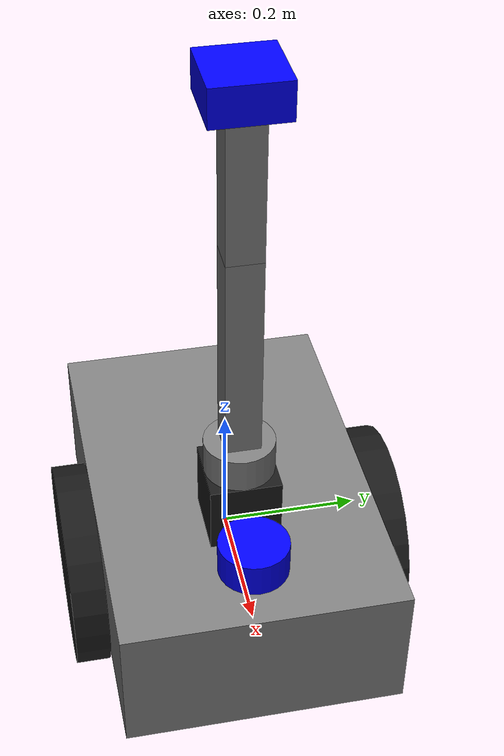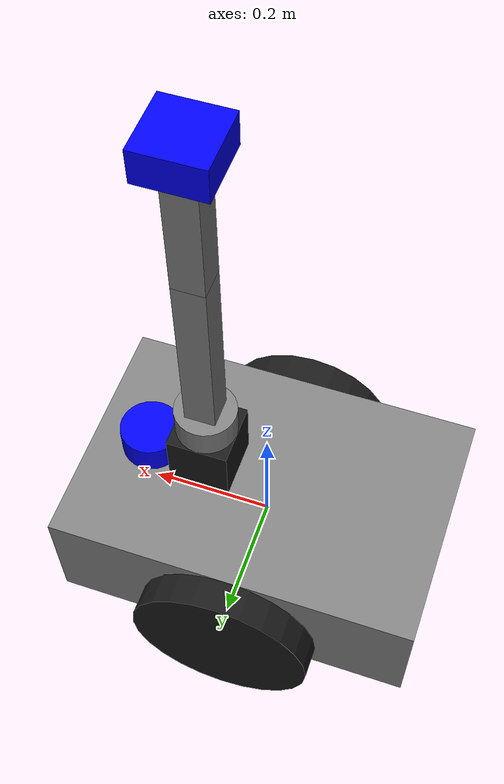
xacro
<?xml version="1.0"?>
<robot xmlns:xacro="http://www.ros.org/wiki/xacro" name="worker">

  <!-- 1. BASE LINK                                   -->
  <link name="base_link">
    <visual>
      <geometry>
        <box size="0.6 0.4 0.2"/>
      </geometry>
      <material name="gray">
        <color rgba="0.5 0.5 0.5 1.0"/>
      </material>
    </visual>
    <collision>
      <geometry>
        <box size="0.6 0.4 0.2"/>
      </geometry>
    </collision>
    <inertial>
      <mass value="15.0"/>
      <origin xyz="0 0 0" rpy="0 0 0"/>
      <inertia ixx="0.25" ixy="0" ixz="0" iyy="0.5" iyz="0" izz="0.6"/>
    </inertial>
  </link>

  <!-- 2. WHEELS                                      -->
  <xacro:macro name="wheel" params="prefix x_offset y_offset">
    <link name="${prefix}_wheel">
      <visual>
        <geometry>
          <cylinder radius="0.15" length="0.05"/>
        </geometry>
        <material name="black">
          <color rgba="0.1 0.1 0.1 1.0"/>
        </material>
      </visual>
      <collision>
        <geometry>
          <cylinder radius="0.15" length="0.05"/>
        </geometry>
      </collision>
      <inertial>
        <mass value="2.0"/>
        <origin xyz="0 0 0" rpy="0 0 0"/>
        <inertia ixx="0.0125" ixy="0" ixz="0" iyy="0.0125" iyz="0" izz="0.0225"/>
      </inertial>
    </link>

    <joint name="${prefix}_wheel_joint" type="continuous">
      <parent link="base_link"/>
      <child link="${prefix}_wheel"/>
      <origin xyz="${x_offset} ${y_offset} -0.05" rpy="-1.5708 0 0"/>
      <axis xyz="0 0 1"/>
    </joint>
  </xacro:macro>

  <xacro:wheel prefix="left" x_offset="0" y_offset="0.225" />
  <xacro:wheel prefix="right" x_offset="0" y_offset="-0.225" />

  <!-- CASTER WHEELS for stability -->
  <link name="front_caster">
    <collision>
      <geometry><sphere radius="0.099"/></geometry>
    </collision>
    <inertial>
      <mass value="0.5"/>
      <inertia ixx="0.001" ixy="0" ixz="0" iyy="0.001" iyz="0" izz="0.001"/>
    </inertial>
  </link>
  <joint name="front_caster_joint" type="fixed">
    <parent link="base_link"/>
    <child link="front_caster"/>
    <origin xyz="0.25 0 -0.1" rpy="0 0 0"/>
  </joint>

  <link name="rear_caster">
    <collision>
      <geometry><sphere radius="0.099"/></geometry>
    </collision>
    <inertial>
      <mass value="0.5"/>
      <inertia ixx="0.001" ixy="0" ixz="0" iyy="0.001" iyz="0" izz="0.001"/>
    </inertial>
  </link>
  <joint name="rear_caster_joint" type="fixed">
    <parent link="base_link"/>
    <child link="rear_caster"/>
    <origin xyz="-0.25 0 -0.1" rpy="0 0 0"/>
  </joint>

  <!-- 3. LIDAR SENSOR                                -->
  <link name="lidar_link">
    <visual>
      <geometry><cylinder radius="0.05" length="0.05"/></geometry>
      <material name="blue"><color rgba="0 0 1 1"/></material>
    </visual>
    <collision>
      <geometry><cylinder radius="0.05" length="0.05"/></geometry>
    </collision>
    <inertial>
      <mass value="0.1"/>
      <inertia ixx="0.0001" ixy="0" ixz="0" iyy="0.0001" iyz="0" izz="0.0001"/>
    </inertial>
  </link>
  <joint name="lidar_joint" type="fixed">
    <parent link="base_link"/>
    <child link="lidar_link"/>
    <origin xyz="0.2 0 0.125" rpy="0 0 0"/>
  </joint>

  <!-- 4. IGNITION GAZEBO PLUGINS                     -->
  <gazebo>
    <plugin filename="libignition-gazebo-diff-drive-system.so" name="ignition::gazebo::systems::DiffDrive">
      <left_joint>left_wheel_joint</left_joint>
      <right_joint>right_wheel_joint</right_joint>
      <wheel_separation>0.45</wheel_separation>
      <wheel_radius>0.15</wheel_radius>
      <odom_publish_frequency>50</odom_publish_frequency>
      <topic>cmd_vel</topic>
      <odom_topic>odom</odom_topic>
      <tf_topic>tf</tf_topic>
      <frame_id>odom</frame_id>
      <child_frame_id>base_link</child_frame_id>
    </plugin>
  </gazebo>

  <gazebo reference="lidar_link">
    <sensor type="gpu_lidar" name="lidar_sensor">
      <pose>0 0 0 0 0 0</pose>
      <visualize>true</visualize>
      <update_rate>10</update_rate>
      <topic>scan</topic>
      <ray>
        <scan>
          <horizontal>
            <samples>360</samples>
            <resolution>1</resolution>
            <min_angle>-3.14159</min_angle>
            <max_angle>3.14159</max_angle>
          </horizontal>
        </scan>
        <range>
          <min>0.15</min>
          <max>12.0</max>
          <resolution>0.01</resolution>
        </range>
      </ray>
    </sensor>
  </gazebo>

  <!-- 5. 3-DOF ARM & GRIPPER                         -->
  <link name="arm_base_link">
    <visual>
      <geometry><box size="0.1 0.1 0.1"/></geometry>
      <material name="black"/>
    </visual>
    <collision><geometry><box size="0.1 0.1 0.1"/></geometry></collision>
    <inertial><mass value="1.0"/><inertia ixx="0.01" ixy="0" ixz="0" iyy="0.01" iyz="0" izz="0.01"/></inertial>
  </link>
  <joint name="arm_base_joint" type="fixed">
    <parent link="base_link"/>
    <child link="arm_base_link"/>
    <origin xyz="0.1 0 0.15" rpy="0 0 0"/>
  </joint>

  <link name="shoulder_link">
    <visual>
      <geometry><cylinder radius="0.05" length="0.1"/></geometry>
      <material name="gray"/>
    </visual>
    <collision><geometry><cylinder radius="0.05" length="0.1"/></geometry></collision>
    <inertial><mass value="1.0"/><inertia ixx="0.01" ixy="0" ixz="0" iyy="0.01" iyz="0" izz="0.01"/></inertial>
  </link>
  <joint name="joint1" type="revolute">
    <parent link="arm_base_link"/>
    <child link="shoulder_link"/>
    <origin xyz="0 0 0.05" rpy="0 0 0"/>
    <axis xyz="0 0 1"/>
    <limit lower="-1.57" upper="1.57" effort="10.0" velocity="1.0"/>
  </joint>

  <link name="upper_arm_link">
    <visual>
      <geometry><box size="0.05 0.05 0.3"/></geometry>
      <origin xyz="0 0 0.15" rpy="0 0 0"/>
      <material name="gray"/>
    </visual>
    <collision><geometry><box size="0.05 0.05 0.3"/></geometry><origin xyz="0 0 0.15" rpy="0 0 0"/></collision>
    <inertial><mass value="1.0"/><origin xyz="0 0 0.15" rpy="0 0 0"/><inertia ixx="0.01" ixy="0" ixz="0" iyy="0.01" iyz="0" izz="0.01"/></inertial>
  </link>
  <joint name="joint2" type="revolute">
    <parent link="shoulder_link"/>
    <child link="upper_arm_link"/>
    <origin xyz="0 0 0.05" rpy="0 0 0"/>
    <axis xyz="0 1 0"/>
    <limit lower="-1.57" upper="1.57" effort="10.0" velocity="1.0"/>
  </joint>

  <link name="forearm_link">
    <visual>
      <geometry><box size="0.05 0.05 0.2"/></geometry>
      <origin xyz="0 0 0.1" rpy="0 0 0"/>
      <material name="gray"/>
    </visual>
    <collision><geometry><box size="0.05 0.05 0.2"/></geometry><origin xyz="0 0 0.1" rpy="0 0 0"/></collision>
    <inertial><mass value="0.5"/><origin xyz="0 0 0.1" rpy="0 0 0"/><inertia ixx="0.01" ixy="0" ixz="0" iyy="0.01" iyz="0" izz="0.01"/></inertial>
  </link>
  <joint name="joint3" type="revolute">
    <parent link="upper_arm_link"/>
    <child link="forearm_link"/>
    <origin xyz="0 0 0.3" rpy="0 0 0"/>
    <axis xyz="0 1 0"/>
    <limit lower="-1.57" upper="1.57" effort="10.0" velocity="1.0"/>
  </joint>

  <!-- Dummy Gripper Link (End Effector) -->
  <link name="gripper_link">
    <visual>
      <geometry><box size="0.1 0.1 0.05"/></geometry>
      <material name="blue"/>
    </visual>
    <collision><geometry><box size="0.1 0.1 0.05"/></geometry></collision>
    <inertial><mass value="0.1"/><inertia ixx="0.001" ixy="0" ixz="0" iyy="0.001" iyz="0" izz="0.001"/></inertial>
  </link>
  <joint name="gripper_fixed_joint" type="fixed">
    <parent link="forearm_link"/>
    <child link="gripper_link"/>
    <origin xyz="0 0 0.225" rpy="0 0 0"/>
  </joint>

  <!-- 6. ROS2 CONTROL (IGNITION)                     -->
  <ros2_control name="IgnitionSystem" type="system">
    <hardware>
      <plugin>ign_ros2_control/IgnitionSystem</plugin>
    </hardware>
    <joint name="joint1">
      <command_interface name="position"/>
      <state_interface name="position"/>
      <state_interface name="velocity"/>
    </joint>
    <joint name="joint2">
      <command_interface name="position"/>
      <state_interface name="position"/>
      <state_interface name="velocity"/>
    </joint>
    <joint name="joint3">
      <command_interface name="position"/>
      <state_interface name="position"/>
      <state_interface name="velocity"/>
    </joint>
  </ros2_control>

  <gazebo>
    <plugin filename="ign_ros2_control-system" name="ign_ros2_control::IgnitionROS2ControlPlugin">
      <parameters>$(find colony_bringup)/config/ros2_controllers.yaml</parameters>
      <ros>
        <namespace>$(arg robot_name)</namespace>
      </ros>
      <robot_param>robot_description</robot_param>
      <robot_param_node>robot_state_publisher</robot_param_node>
    </plugin>
  </gazebo>

</robot>
